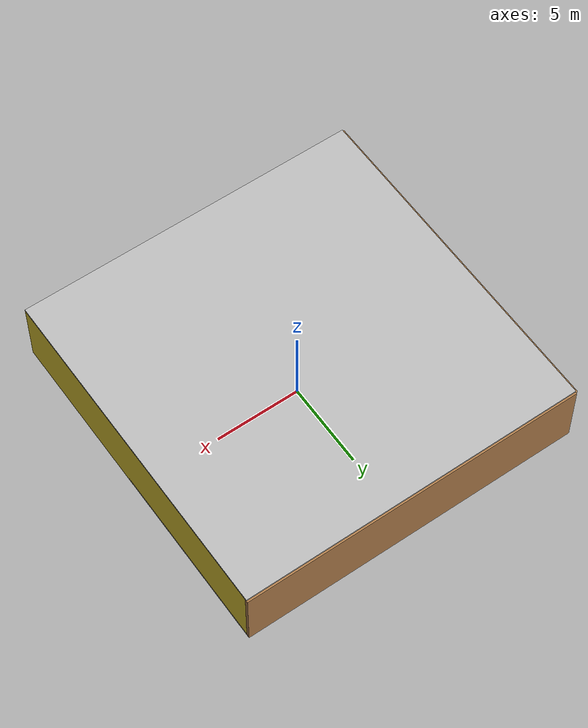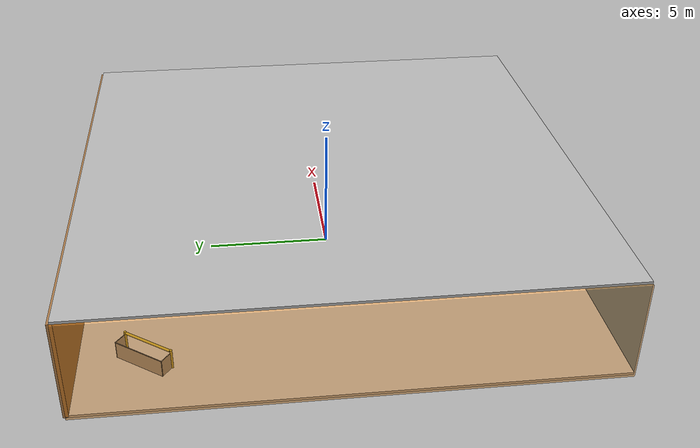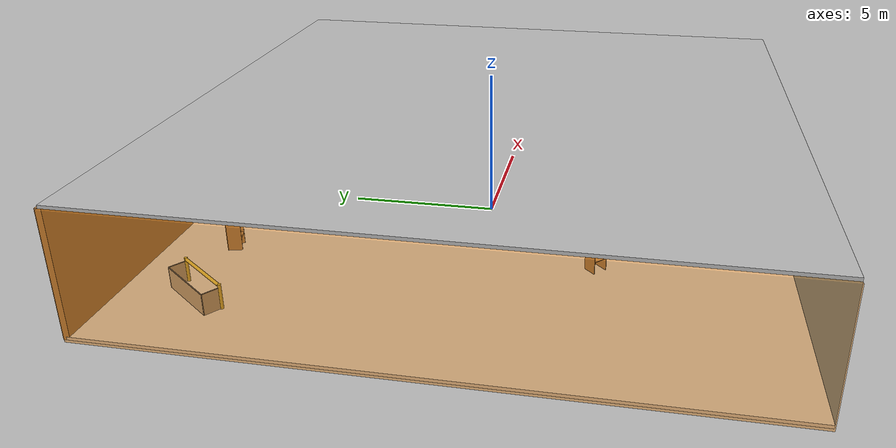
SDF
<sdf version="1.4">
 <world name="default">
  <physics type="ode">
   <max_step_size>0.001</max_step_size>
   <real_time_factor>1</real_time_factor>
   <real_time_update_rate>1000</real_time_update_rate>
   <gravity>0 0 -9.8</gravity>
  </physics>
  <scene><ambient>0.4 0.4 0.4 1</ambient><background>0.7 0.7 0.7 1</background><shadows>1</shadows></scene>
  <model name="Surrounding">
   <static>1</static>
   <link name="Ceiling">
    <collision name="Ceiling_Collision"><geometry><box><size>20 20 0.1</size></box></geometry></collision>
    <visual name="Ceiling_Visual">
     <geometry><box><size>20 20 0.1</size></box></geometry>
     <material>
      <script><uri>file://media/materials/scripts/gazebo.material</uri><name>Gazebo/PioneerBody</name></script>
     </material>
    </visual>
    <pose>0 0 4.05 0 0 0</pose>
   </link>
   <link name="Wall_South">
    <collision name="Wall_South_Collision">
     <geometry><box><size>20 0 4</size></box></geometry>
     <pose>0 0 2 0 -0 0</pose>
    </collision>
    <visual name="Wall_South_Visual">
     <pose>0 0 2 0 -0 0</pose>
     <geometry><box><size>20 0 4</size></box></geometry>
     <material>
      <script><uri>file://media/materials/scripts/gazebo.material</uri><name>Gazebo/SkyBlue</name></script>
     </material>
    </visual>
    <velocity_decay><linear>0</linear><angular>0</angular></velocity_decay>
    <pose>0 -10 0 0 -0 0</pose>
   </link>
   <link name="Wall_East">
    <collision name="Wall_21_Collision">
     <geometry><box><size>20 0 4</size></box></geometry>
     <pose>0 0 2 0 -0 0</pose>
    </collision>
    <visual name="Wall_21_Visual">
     <pose>0 0 2 0 -0 0</pose>
     <geometry><box><size>20 0 4</size></box></geometry>
     <material>
      <script><uri>file://media/materials/scripts/gazebo.material</uri><name>Gazebo/ZincYellow</name></script>
     </material>
    </visual>
    <velocity_decay><linear>0</linear><angular>0</angular></velocity_decay>
    <pose>10 0 0 0 -0 1.5708</pose>
   </link>
   <link name="Wall_North">
    <collision name="Wall_22_Collision">
     <geometry><box><size>20 0.2 4</size></box></geometry>
     <pose>0 0 2 0 -0 0</pose>
    </collision>
    <visual name="Wall_22_Visual">
     <pose>0 0 2 0 -0 0</pose>
     <geometry><box><size>20 0.2 4</size></box></geometry>
     <material>
      <script><uri>file://media/materials/scripts/gazebo.material</uri><name>Gazebo/WoodFloor</name></script>
     </material>
    </visual>
    <velocity_decay><linear>0</linear><angular>0</angular></velocity_decay>
    <pose>0 10 0 0 -0 0</pose>
   </link>
   <link name="Wall_West">
    <collision name="Wall_23_Collision">
     <geometry><box><size>20 0.2 4</size></box></geometry>
     <pose>0 0 2 0 -0 0</pose>
    </collision>
    <visual name="Wall_23_Visual">
     <pose>0 0 2 0 -0 0</pose>
     <geometry><box><size>20 0.2 4</size></box></geometry>
     <material>
      <script>
       <uri>file://media/materials/scripts/gazebo.material</uri>
       <name>Gazebo/OrangeTransparent</name>
      </script>
     </material>
    </visual>
    <velocity_decay><linear>0</linear><angular>0</angular></velocity_decay>
    <pose>-10 0 0 0 0 -1.5708</pose>
   </link>
   <link name="Ground_link">
    <collision name="collision">
     <pose>0 0 .05 0 -0 0</pose>
     <geometry><box><size>20 20 0.1</size></box></geometry>
    </collision>
    <visual name="visual">
     <pose>0 0 .05 0 -0 0</pose>
     <geometry><box><size>20 20 0.1</size></box></geometry>
     <material>
      <script><uri>file://media/materials/scripts/gazebo.material</uri><name>Gazebo/WhiteGlow</name></script>
     </material>
    </visual>
   </link>
   <static>1</static>
  </model>
  <spherical_coordinates>
   <surface_model>EARTH_WGS84</surface_model>
   <latitude_deg>0</latitude_deg>
   <longitude_deg>0</longitude_deg>
   <elevation>0</elevation>
   <heading_deg>0</heading_deg>
  </spherical_coordinates>
  <light name="lightball_0" type="diffuse">
   <diffuse>0.8 0.8 0.8 1</diffuse>
   <specular>0.2 0.2 0.2 1</specular>
   <attenuation>
    <range>100</range>
    <constant>0.7</constant>
    <linear>0.01</linear>
    <quadratic>0.001</quadratic>
   </attenuation>
   <direction>-0.5 0.1 -0.9</direction>
   <pose>-7.15973648343 -5.19707353911 0.557282735772 0 0 0</pose>
  </light>
  <light name="lightball_1" type="diffuse">
   <diffuse>0.8 0.8 0.8 1</diffuse>
   <specular>0.2 0.2 0.2 1</specular>
   <attenuation>
    <range>100</range>
    <constant>0.7</constant>
    <linear>0.01</linear>
    <quadratic>0.001</quadratic>
   </attenuation>
   <direction>-0.5 0.1 -0.9</direction>
   <pose>7.99938881632 4.01767195366 1.00426292722 0 0 0</pose>
  </light>
  <light name="lightball_2" type="diffuse">
   <diffuse>0.8 0.8 0.8 1</diffuse>
   <specular>0.2 0.2 0.2 1</specular>
   <attenuation>
    <range>100</range>
    <constant>0.7</constant>
    <linear>0.01</linear>
    <quadratic>0.001</quadratic>
   </attenuation>
   <direction>-0.5 0.1 -0.9</direction>
   <pose>1.29202693337 -5.29822943895 0.971943288429 0 0 0</pose>
  </light>
  <light name="lightball_3" type="diffuse">
   <diffuse>0.8 0.8 0.8 1</diffuse>
   <specular>0.2 0.2 0.2 1</specular>
   <attenuation>
    <range>100</range>
    <constant>0.7</constant>
    <linear>0.01</linear>
    <quadratic>0.001</quadratic>
   </attenuation>
   <direction>-0.5 0.1 -0.9</direction>
   <pose>6.42704189286 8.4855461939 3.51563425639 0 0 0</pose>
  </light>
  <light name="lightball_4" type="diffuse">
   <diffuse>0.8 0.8 0.8 1</diffuse>
   <specular>0.2 0.2 0.2 1</specular>
   <attenuation>
    <range>100</range>
    <constant>0.7</constant>
    <linear>0.01</linear>
    <quadratic>0.001</quadratic>
   </attenuation>
   <direction>-0.5 0.1 -0.9</direction>
   <pose>3.09270053399 7.84014399139 2.05757451529 0 0 0</pose>
  </light>
  <light name="lightball_5" type="diffuse">
   <diffuse>0.8 0.8 0.8 1</diffuse>
   <specular>0.2 0.2 0.2 1</specular>
   <attenuation>
    <range>100</range>
    <constant>0.7</constant>
    <linear>0.01</linear>
    <quadratic>0.001</quadratic>
   </attenuation>
   <direction>-0.5 0.1 -0.9</direction>
   <pose>0.829164687267 9.52260821294 3.77027781496 0 0 0</pose>
  </light>
  <light name="lightball_6" type="diffuse">
   <diffuse>0.8 0.8 0.8 1</diffuse>
   <specular>0.2 0.2 0.2 1</specular>
   <attenuation>
    <range>100</range>
    <constant>0.7</constant>
    <linear>0.01</linear>
    <quadratic>0.001</quadratic>
   </attenuation>
   <direction>-0.5 0.1 -0.9</direction>
   <pose>-3.77028378606 -3.56279176904 2.76843428615 0 0 0</pose>
  </light>
  <light name="lightball_7" type="diffuse">
   <diffuse>0.8 0.8 0.8 1</diffuse>
   <specular>0.2 0.2 0.2 1</specular>
   <attenuation>
    <range>100</range>
    <constant>0.7</constant>
    <linear>0.01</linear>
    <quadratic>0.001</quadratic>
   </attenuation>
   <direction>-0.5 0.1 -0.9</direction>
   <pose>7.1504082105 8.89560513724 0.616757631154 0 0 0</pose>
  </light>
  <light name="lightball_8" type="diffuse">
   <diffuse>0.8 0.8 0.8 1</diffuse>
   <specular>0.2 0.2 0.2 1</specular>
   <attenuation>
    <range>100</range>
    <constant>0.7</constant>
    <linear>0.01</linear>
    <quadratic>0.001</quadratic>
   </attenuation>
   <direction>-0.5 0.1 -0.9</direction>
   <pose>-7.93860793935 7.27934846767 2.22375804923 0 0 0</pose>
  </light>
  <light name="lightball_9" type="diffuse">
   <diffuse>0.8 0.8 0.8 1</diffuse>
   <specular>0.2 0.2 0.2 1</specular>
   <attenuation>
    <range>100</range>
    <constant>0.7</constant>
    <linear>0.01</linear>
    <quadratic>0.001</quadratic>
   </attenuation>
   <direction>-0.5 0.1 -0.9</direction>
   <pose>-2.8888816114 -9.26343154252 1.03462061956 0 0 0</pose>
  </light>
  <light name="lightball_10" type="diffuse">
   <diffuse>0.8 0.8 0.8 1</diffuse>
   <specular>0.2 0.2 0.2 1</specular>
   <attenuation>
    <range>100</range>
    <constant>0.7</constant>
    <linear>0.01</linear>
    <quadratic>0.001</quadratic>
   </attenuation>
   <direction>-0.5 0.1 -0.9</direction>
   <pose>-3.37859136671 -2.82550644386 1.82409086323 0 0 0</pose>
  </light>
  <light name="lightball_11" type="diffuse">
   <diffuse>0.8 0.8 0.8 1</diffuse>
   <specular>0.2 0.2 0.2 1</specular>
   <attenuation>
    <range>100</range>
    <constant>0.7</constant>
    <linear>0.01</linear>
    <quadratic>0.001</quadratic>
   </attenuation>
   <direction>-0.5 0.1 -0.9</direction>
   <pose>-8.97525604305 2.65645844922 2.19188437224 0 0 0</pose>
  </light>
  <light name="lightball_12" type="diffuse">
   <diffuse>0.8 0.8 0.8 1</diffuse>
   <specular>0.2 0.2 0.2 1</specular>
   <attenuation>
    <range>100</range>
    <constant>0.7</constant>
    <linear>0.01</linear>
    <quadratic>0.001</quadratic>
   </attenuation>
   <direction>-0.5 0.1 -0.9</direction>
   <pose>-6.58798282802 -0.141231382374 3.31105161672 0 0 0</pose>
  </light>
  <light name="lightball_13" type="diffuse">
   <diffuse>0.8 0.8 0.8 1</diffuse>
   <specular>0.2 0.2 0.2 1</specular>
   <attenuation>
    <range>100</range>
    <constant>0.7</constant>
    <linear>0.01</linear>
    <quadratic>0.001</quadratic>
   </attenuation>
   <direction>-0.5 0.1 -0.9</direction>
   <pose>0.817546978244 6.63966603176 2.05838138155 0 0 0</pose>
  </light>
  <include>
   <uri>model://robocup_3Dsim_goal</uri>
   <pose>-7.28921066627 7.30956610675 0 0 0 2.50911773824</pose>
  </include>
  <include><uri>model://cabinet</uri><pose>-3.76765032086 -3.96812500511 0 0 0 0.788333625633</pose></include>
  <include><uri>model://cabinet</uri><pose>-4.39617240328 7.68027414565 0 0 0 1.83849666107</pose></include>
  <include><uri>model://table</uri><pose>-2.18127406736 5.26900470551 0 0 0 1.2330128107</pose></include>
  <include>
   <uri>model://construction_cone</uri>
   <pose>1.38738735439 3.8927541004 0 0 0 2.07750813761</pose>
  </include>
  <include><uri>model://table</uri><pose>4.80409023199 -1.23305156206 0 0 0 1.20893941566</pose></include>
  <include>
   <uri>model://textured_shapes</uri>
   <pose>7.33137704025 7.72367555319 0 0 0 1.7488084489</pose>
  </include>
 </world>
</sdf>

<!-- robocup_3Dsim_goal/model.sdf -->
<sdf version="1.5">
  <model name="robocup_3d_goal">
    <static>true</static>
    <link name="left_post">
      <pose>0 1.05 0.45 0 0 0</pose>
      <collision name="collision">
        <geometry>
          <cylinder>
            <radius>0.05</radius>
            <length>0.9</length>
          </cylinder>
        </geometry>
      </collision>
      <visual name="visual">
        <geometry>
          <cylinder>
            <radius>0.05</radius>
            <length>0.9</length>
          </cylinder>
        </geometry>
        <material>
          <script>
            <uri>file://media/materials/scripts/gazebo.material</uri>
            <name>Gazebo/ZincYellow</name>
          </script>
        </material>
      </visual>
    </link>
    <link name="left_support_horiz_lower">
      <pose>0.30 1.05 0.01 0 0 0</pose>
      <collision name="collision">
        <geometry>
          <box>
            <size>0.50 0.02 0.02</size>
          </box>
        </geometry>
      </collision>
      <visual name="visual">
        <geometry>
          <box>
            <size>0.50 0.02 0.02</size>
          </box>
        </geometry>
        <material>
          <script>
            <uri>file://media/materials/scripts/gazebo.material</uri>
            <name>Gazebo/White</name>
          </script>
        </material>
      </visual>
    </link>
    <link name="left_support_horiz_upper">
      <pose>0.30 1.05 0.79 0 0 0</pose>
      <collision name="collision">
        <geometry>
          <box>
            <size>0.50 0.02 0.02</size>
          </box>
        </geometry>
      </collision>
      <visual name="visual">
        <geometry>
          <box>
            <size>0.50 0.02 0.02</size>
          </box>
        </geometry>
        <material>
          <script>
            <uri>file://media/materials/scripts/gazebo.material</uri>
            <name>Gazebo/White</name>
          </script>
        </material>
      </visual>
    </link>
    <link name="left_support_vertical">
      <pose>0.56 1.05 0.4 0 1.5708 0</pose>
      <collision name="collision">
        <geometry>
          <box>
            <size>0.80 0.02 0.02</size>
          </box>
        </geometry>
      </collision>
      <visual name="visual">
        <geometry>
          <box>
            <size>0.80 0.02 0.02</size>
          </box>
        </geometry>
        <material>
          <script>
            <uri>file://media/materials/scripts/gazebo.material</uri>
            <name>Gazebo/White</name>
          </script>
        </material>
      </visual>
    </link>
    <link name="right_support_horiz_lower">
      <pose>0.30 -1.05 0.01 0 0 0</pose>
      <collision name="collision">
        <geometry>
          <box>
            <size>0.50 0.02 0.02</size>
          </box>
        </geometry>
      </collision>
      <visual name="visual">
        <geometry>
          <box>
            <size>0.50 0.02 0.02</size>
          </box>
        </geometry>
        <material>
          <script>
            <uri>file://media/materials/scripts/gazebo.material</uri>
            <name>Gazebo/White</name>
          </script>
        </material>
      </visual>
    </link>
    <link name="right_support_horiz_upper">
      <pose>0.30 -1.05 0.79 0 0 0</pose>
      <collision name="collision">
        <geometry>
          <box>
            <size>0.50 0.02 0.02</size>
          </box>
        </geometry>
      </collision>
      <visual name="visual">
        <geometry>
          <box>
            <size>0.50 0.02 0.02</size>
          </box>
        </geometry>
        <material>
          <script>
            <uri>file://media/materials/scripts/gazebo.material</uri>
            <name>Gazebo/White</name>
          </script>
        </material>
      </visual>
    </link>
    <link name="right_support_vertical">
      <pose>0.56 -1.05 0.4 0 1.5708 0</pose>
      <collision name="collision">
        <geometry>
          <box>
            <size>0.80 0.02 0.02</size>
          </box>
        </geometry>
      </collision>
      <visual name="visual">
        <geometry>
          <box>
            <size>0.80 0.02 0.02</size>
          </box>
        </geometry>
        <material>
          <script>
            <uri>file://media/materials/scripts/gazebo.material</uri>
            <name>Gazebo/White</name>
          </script>
        </material>
      </visual>
    </link>
    <link name="center_support_horiz_lower">
      <pose>0.56 0 0.01 0 1.5708 0</pose>
      <collision name="collision">
        <geometry>
          <box>
            <size>0.02 2.08 0.02</size>
          </box>
        </geometry>
      </collision>
      <visual name="visual">
        <geometry>
          <box>
            <size>0.02 2.08 0.02</size>
          </box>
        </geometry>
        <material>
          <script>
            <uri>file://media/materials/scripts/gazebo.material</uri>
            <name>Gazebo/White</name>
          </script>
        </material>
      </visual>
    </link>
    <link name="center_support_horiz_upper">
      <pose>0.56 0 0.79 0 1.5708 0</pose>
      <collision name="collision">
        <geometry>
          <box>
            <size>0.02 2.08 0.02</size>
          </box>
        </geometry>
      </collision>
      <visual name="visual">
        <geometry>
          <box>
            <size>0.02 2.08 0.02</size>
          </box>
        </geometry>
        <material>
          <script>
            <uri>file://media/materials/scripts/gazebo.material</uri>
            <name>Gazebo/White</name>
          </script>
        </material>
      </visual>
    </link>
    <link name="right_post">
      <pose>0 -1.05 0.45 0 0 0</pose>
      <collision name="collision">
        <geometry>
          <cylinder>
            <radius>0.05</radius>
            <length>0.9</length>
          </cylinder>
        </geometry>
      </collision>
      <visual name="visual">
        <geometry>
          <cylinder>
            <radius>0.05</radius>
            <length>0.9</length>
          </cylinder>
        </geometry>
        <material>
          <script>
            <uri>file://media/materials/scripts/gazebo.material</uri>
            <name>Gazebo/ZincYellow</name>
          </script>
        </material>
      </visual>
    </link>
    <link name="crossbar">
      <pose>0 0 0.85 1.57 1.57 0</pose>
      <collision name="collision">
        <geometry>
          <cylinder>
            <radius>0.05</radius>
            <length>2.0</length>
          </cylinder>
        </geometry>
      </collision>
      <visual name="visual">
        <geometry>
          <cylinder>
            <radius>0.05</radius>
            <length>2.0</length>
          </cylinder>
        </geometry>
        <material>
          <script>
            <uri>file://media/materials/scripts/gazebo.material</uri>
            <name>Gazebo/ZincYellow</name>
          </script>
        </material>
      </visual>
    </link>
    <link name="center_net">
      <pose>0.56 0 0.40 0 0 0</pose>
      <collision name="collision">
        <geometry>
          <box>
            <size>0.01 2.1 0.80</size>
          </box>
        </geometry>
      </collision>
      <visual name="visual">
        <geometry>
          <box>
            <size>0.01 2.1 0.80</size>
          </box>
        </geometry>
        <material>
          <script>
            <uri>model://../model_source/models/robocup09_spl_field/materials/scripts/</uri>
            <uri>model://../model_source/models/robocup09_spl_field/materials/textures/</uri>
            <name>RoboCup/Net</name>
          </script>
        </material>
      </visual>
    </link>
    <link name="left_net">
      <pose>0.30 1.05 0.40 0 0 0</pose>
      <collision name="collision">
        <geometry>
          <box>
            <size>0.50 0.01 0.76</size>
          </box>
        </geometry>
      </collision>
      <visual name="visual">
        <geometry>
          <box>
            <size>0.50 0.01 0.76</size>
          </box>
        </geometry>
        <material>
          <script>
            <uri>model://../model_source/models/robocup09_spl_field/materials/scripts/</uri>
            <uri>model://../model_source/models/robocup09_spl_field/materials/textures/</uri>
            <name>RoboCup/Net</name>
          </script>
        </material>
      </visual>
    </link>
    <link name="right_net">
      <pose>0.30 -1.05 0.40 0 0 0</pose>
      <collision name="collision">
        <geometry>
          <box>
            <size>0.50 0.01 0.76</size>
          </box>
        </geometry>
      </collision>
      <visual name="visual">
        <geometry>
          <box>
            <size>0.50 0.01 0.76</size>
          </box>
        </geometry>
        <material>
          <script>
            <uri>model://../model_source/models/robocup09_spl_field/materials/scripts/</uri>
            <uri>model://../model_source/models/robocup09_spl_field/materials/textures/</uri>
            <name>RoboCup/Net</name>
          </script>
        </material>
      </visual>
    </link>
  </model>
</sdf>

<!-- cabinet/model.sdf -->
<sdf version="1.5">
  <model name="cabinet">
    <static>true</static>
    <link name="cabinet_bottom_plate">
      <inertial>
        <pose>0 0 -1 0 0 0</pose>
        <inertia>
          <ixx>2.050000</ixx>
          <ixy>0</ixy>
          <ixz>0</ixz>
          <iyy>2.050000</iyy>
          <iyz>0</iyz>
          <izz>2.050000</izz>
        </inertia>
        <mass>25.000000</mass>
      </inertial>
      <collision name="cabinet_bottom_plate_geom">
        <pose>0 0 0.010000 0 0 0</pose>
        <geometry>
          <box>
            <size>0.450000 0.450000 0.020000</size>
          </box>
        </geometry>
      </collision>
      <visual name="cabinet_bottom_plate_geom_visual">
        <pose>0 0 0.010000 0 0 0</pose>
        <geometry>
          <box>
            <size>0.450000 0.450000 0.020000</size>
          </box>
        </geometry>
        <material>
          <script>
            <uri>model://media/materials/scripts/gazebo.material</uri>
            <name>Gazebo/Wood</name>
          </script>
        </material>
      </visual>
      <collision name="cabinet_bottom_plate_geom_cabinet_back_plate">
        <pose>0.235000 0 0.510000 0 0 0</pose>
        <geometry>
          <box>
            <size>0.020000 0.450000 1.020000</size>
          </box>
        </geometry>
      </collision>
      <visual name="cabinet_bottom_plate_geom_cabinet_back_plate_visual">
        <pose>0.235000 0 0.510000 0 0 0</pose>
        <geometry>
          <box>
            <size>0.020000 0.450000 1.020000</size>
          </box>
        </geometry>
        <material>
          <script>
            <uri>model://media/materials/scripts/gazebo.material</uri>
            <name>Gazebo/Wood</name>
          </script>
        </material>
      </visual>
      <collision name="cabinet_bottom_plate_geom_cabinet_left_plate">
        <pose>0 0.235000 0.510000 0 0 0</pose>
        <geometry>
          <box>
            <size>0.450000 0.020000 1.020000</size>
          </box>
        </geometry>
      </collision>
      <visual name="cabinet_bottom_plate_geom_cabinet_left_plate_visual">
        <pose>0 0.235000 0.510000 0 0 0</pose>
        <geometry>
          <box>
            <size>0.450000 0.020000 1.020000</size>
          </box>
        </geometry>
        <material>
          <script>
            <uri>model://media/materials/scripts/gazebo.material</uri>
            <name>Gazebo/Wood</name>
          </script>
        </material>
      </visual>
      <collision name="cabinet_bottom_plate_geom_cabinet_middle_plate">
        <pose>0 0 0.510000 0 0 0</pose>
        <geometry>
          <box>
            <size>0.450000 0.450000 0.020000</size>
          </box>
        </geometry>
      </collision>
      <visual name="cabinet_bottom_plate_geom_cabinet_middle_plate_visual">
        <pose>0 0 0.510000 0 0 0</pose>
        <geometry>
          <box>
            <size>0.450000 0.450000 0.020000</size>
          </box>
        </geometry>
        <material>
          <script>
            <uri>model://media/materials/scripts/gazebo.material</uri>
            <name>Gazebo/Wood</name>
          </script>
        </material>
      </visual>
      <collision name="cabinet_bottom_plate_geom_cabinet_right_plate">
        <pose>0 -0.235000 0.510000 0 0 0</pose>
        <geometry>
          <box>
            <size>0.450000 0.020000 1.020000</size>
          </box>
        </geometry>
      </collision>
      <visual name="cabinet_bottom_plate_geom_cabinet_right_plate_visual">
        <pose>0 -0.235000 0.510000 0 0 0</pose>
        <geometry>
          <box>
            <size>0.450000 0.020000 1.020000</size>
          </box>
        </geometry>
        <material>
          <script>
            <uri>model://media/materials/scripts/gazebo.material</uri>
            <name>Gazebo/Wood</name>
          </script>
        </material>
      </visual>
      <collision name="cabinet_bottom_plate_geom_cabinet_top_plate">
        <pose>0 0 1.010000 0 0 0</pose>
        <geometry>
          <box>
            <size>0.450000 0.450000 0.020000</size>
          </box>
        </geometry>
      </collision>
      <visual name="cabinet_bottom_plate_geom_cabinet_top_plate_visual">
        <pose>0 0 1.010000 0 0 0</pose>
        <geometry>
          <box>
            <size>0.450000 0.450000 0.020000</size>
          </box>
        </geometry>
        <material>
          <script>
            <uri>model://media/materials/scripts/gazebo.material</uri>
            <name>Gazebo/Wood</name>
          </script>
        </material>
      </visual>
    </link>
  </model>
</sdf>

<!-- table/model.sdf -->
<sdf version="1.5">
  <model name="table">
    <static>true</static>
    <link name="link">
      <collision name="surface">
        <pose>0 0 1.0 0 0 0</pose>
        <geometry>
          <box>
            <size>1.5 0.8 0.03</size>
          </box>
        </geometry>
        <surface>
          <friction>
            <ode>
              <mu>0.6</mu>
              <mu2>0.6</mu2>
            </ode>
          </friction>
        </surface>
      </collision>
      <visual name="visual1">
        <pose>0 0 1.0 0 0 0</pose>
        <geometry>
          <box>
            <size>1.5 0.8 0.03</size>
          </box>
        </geometry>
        <material>
          <script>
            <uri>model://media/materials/scripts/gazebo.material</uri>
            <name>Gazebo/Wood</name>
          </script>
        </material>
      </visual>
      <collision name="front_left_leg">
        <pose>0.68 0.38 0.5 0 0 0</pose>
        <geometry>
          <cylinder>
            <radius>0.02</radius>
            <length>1.0</length>
          </cylinder>
        </geometry>
      </collision>
      <visual name="front_left_leg">
        <pose>0.68 0.38 0.5 0 0 0</pose>
        <geometry>
          <cylinder>
            <radius>0.02</radius>
            <length>1.0</length>
          </cylinder>
        </geometry>
        <material>
          <script>
            <uri>model://media/materials/scripts/gazebo.material</uri>
            <name>Gazebo/Grey</name>
          </script>
        </material>
      </visual>
      <collision name="front_right_leg">
        <pose>0.68 -0.38 0.5 0 0 0</pose>
        <geometry>
          <cylinder>
            <radius>0.02</radius>
            <length>1.0</length>
          </cylinder>
        </geometry>
      </collision>
      <visual name="front_right_leg">
        <pose>0.68 -0.38 0.5 0 0 0</pose>
        <geometry>
          <cylinder>
            <radius>0.02</radius>
            <length>1.0</length>
          </cylinder>
        </geometry>
        <material>
          <script>
            <uri>model://media/materials/scripts/gazebo.material</uri>
            <name>Gazebo/Grey</name>
          </script>
        </material>
      </visual>
      <collision name="back_right_leg">
        <pose>-0.68 -0.38 0.5 0 0 0</pose>
        <geometry>
          <cylinder>
            <radius>0.02</radius>
            <length>1.0</length>
          </cylinder>
        </geometry>
      </collision>
      <visual name="back_right_leg">
        <pose>-0.68 -0.38 0.5 0 0 0</pose>
        <geometry>
          <cylinder>
            <radius>0.02</radius>
            <length>1.0</length>
          </cylinder>
        </geometry>
        <material>
          <script>
            <uri>model://media/materials/scripts/gazebo.material</uri>
            <name>Gazebo/Grey</name>
          </script>
        </material>
      </visual>
      <collision name="back_left_leg">
        <pose>-0.68 0.38 0.5 0 0 0</pose>
        <geometry>
          <cylinder>
            <radius>0.02</radius>
            <length>1.0</length>
          </cylinder>
        </geometry>
      </collision>
      <visual name="back_left_leg">
        <pose>-0.68 0.38 0.5 0 0 0</pose>
        <geometry>
          <cylinder>
            <radius>0.02</radius>
            <length>1.0</length>
          </cylinder>
        </geometry>
        <material>
          <script>
            <uri>model://media/materials/scripts/gazebo.material</uri>
            <name>Gazebo/Grey</name>
          </script>
        </material>
      </visual>
    </link>
  </model>
</sdf>

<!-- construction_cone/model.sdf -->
<sdf version="1.5">
  <model name="Construction Cone">
    <link name="link">
      <collision name="collision">
        <geometry>
          <mesh>
            <scale>10 10 10</scale>
            <uri>file://isr-testbed/construction_cone/meshes/construction_cone.dae</uri>
          </mesh>
        </geometry>
      </collision>
      <visual name="visual">
        <geometry>
          <mesh>
            <scale>10 10 10</scale>
            <uri>file://isr-testbed/construction_cone/meshes/construction_cone.dae</uri>
          </mesh>
        </geometry>
      </visual>
    </link>
  </model>
</sdf>

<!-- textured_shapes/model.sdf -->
<sdf version="1.6">
  <model name="textured_shapes">
    <pose>0 0 0.5 0 0 0</pose>
    <link name="box">
      <pose>0 -1.5 0 0 0 0</pose>
      <collision name="collision">
        <geometry>
          <box>
            <size>1 1 1</size>
          </box>
        </geometry>
      </collision>
      <visual name="visual">
        <geometry>
          <box>
            <size>1 1 1</size>
          </box>
        </geometry>
        <material>
          <script>
            <uri>model://../model_source/models/textured_shapes/materials/scripts</uri>
            <uri>model://../model_source/models/textured_shapes/materials/textures</uri>
            <name>TexturedShape/Squares</name>
          </script>
        </material>
      </visual>
    </link>
    <link name="sphere">
      <collision name="collision">
        <geometry>
          <sphere>
            <radius>0.5</radius>
          </sphere>
        </geometry>
      </collision>
      <visual name="visual">
        <geometry>
          <sphere>
            <radius>0.5</radius>
          </sphere>
        </geometry>
        <material>
          <script>
            <uri>model://../model_source/models/textured_shapes/materials/scripts</uri>
            <uri>model://../model_source/models/textured_shapes/materials/textures</uri>
            <name>TexturedShape/Squares</name>
          </script>
        </material>
      </visual>
    </link>
    <link name="cylinder">
      <pose>0 1.5 0 0 0 0</pose>
      <collision name="collision">
        <geometry>
          <cylinder>
            <radius>0.5</radius>
            <length>1</length>
          </cylinder>
        </geometry>
      </collision>
      <visual name="visual">
        <geometry>
          <cylinder>
            <radius>0.5</radius>
            <length>1</length>
          </cylinder>
        </geometry>
        <material>
          <script>
            <uri>model://../model_source/models/textured_shapes/materials/scripts</uri>
            <uri>model://../model_source/models/textured_shapes/materials/textures</uri>
            <name>TexturedShape/Squares</name>
          </script>
        </material>
      </visual>
    </link>
  </model>
</sdf>
